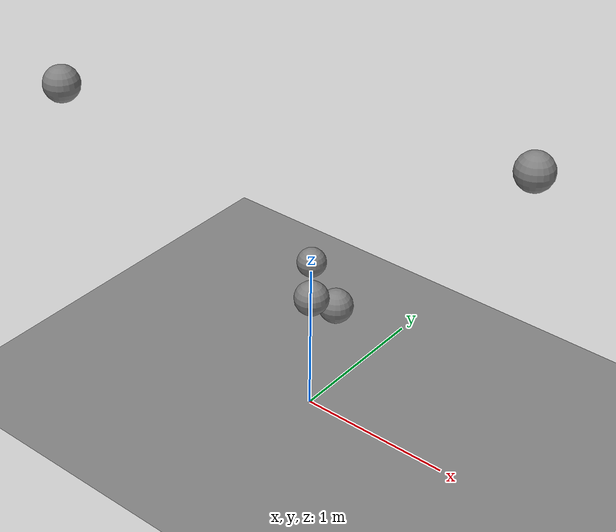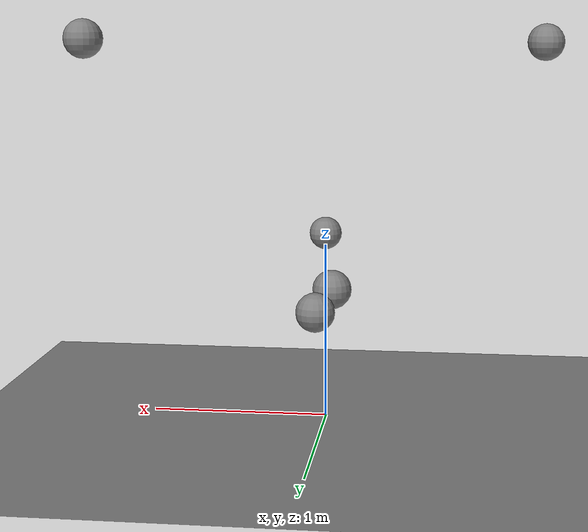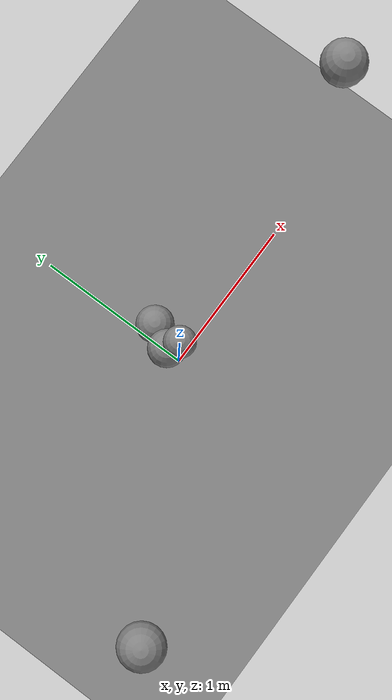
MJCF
<mujoco model="humanoid">

  <statistic extent="2" center="0 0 1"/>

  <option timestep="0.00555"/>

  <default>
    <motor ctrlrange="-1 1" ctrllimited="true"/>
    <default class="body">
      <geom type="capsule" condim="1" friction="1.0 0.05 0.05" solimp=".9 .99 .003" solref=".015 1"/>
      <joint type="hinge" damping="0.1" stiffness="5" armature=".007" limited="true" solimplimit="0 .99 .01"/>
      <site size=".04" group="3"/>
      <default class="force-torque">
        <site type="box" size=".01 .01 .02" rgba="1 0 0 1" />
      </default>
      <default class="touch">
        <site type="capsule" rgba="0 0 1 .3"/>
      </default>
    </default>
  </default>

  <worldbody>
    <geom name="floor" type="plane" conaffinity="1" size="100 100 .2"/>
    <body name="pelvis" pos="0 0 1" childclass="body">
      <freejoint name="root"/>
      <light name="top" pos="0 0 2" mode="trackcom"/>
      <camera name="back" pos="-3 0 1" xyaxes="0 -1 0 1 0 2" mode="trackcom"/>
      <camera name="side" pos="0 -3 1" xyaxes="1 0 0 0 1 2" mode="trackcom"/>
      <site name="root" class="force-torque"/>
      <geom name="pelvis" type="sphere" pos="0 0 0.07" size=".09" density="2226"/>
      <site name="pelvis" class="touch" type="sphere" pos="0 0 0.07" size="0.091"/>

      <body name="tail" pos="-1.24087 -0.718302 1">
        <geom name="tail" type="sphere" pos="0 0 0.12" size="0.11" density="1794"/>
        <site name="tail" class="touch" type="sphere" pos="0 0 0.12" size="0.111"/>
        <body name="taii2" pos="0 0 0.223894">
        </body>
      </body>

      <body name="spine" pos="1.33812 0.096014 1.0297562">
        <geom name="spine" type="sphere" pos="0 0 0.12" size="0.11" density="1794"/>
        <site name="spine" class="touch" type="sphere" pos="0 0 0.12" size="0.111"/>
        <body name="right_thign" pos="-1.30135 0.103306 -1.49297">
        	<geom name="right_thign" type="sphere" pos="0 0 0.12" size="0.11" density="1794"/>
        	<site name="right_thign" class="touch" type="sphere" pos="0 0 0.12" size="0.111"/>

        </body>
        <body name="left_thign" pos="-1.37978 -0.0398788 -1.39225">
        	<geom name="left_thign" type="sphere" pos="0 0 0.12" size="0.11" density="1794"/>
        	<site name="left_thign" class="touch" type="sphere" pos="0 0 0.12" size="0.111"/>

        </body>
      </body>
    </body>
  </worldbody>

  <actuator>
  </actuator>

  <sensor>
  </sensor>

</mujoco>
